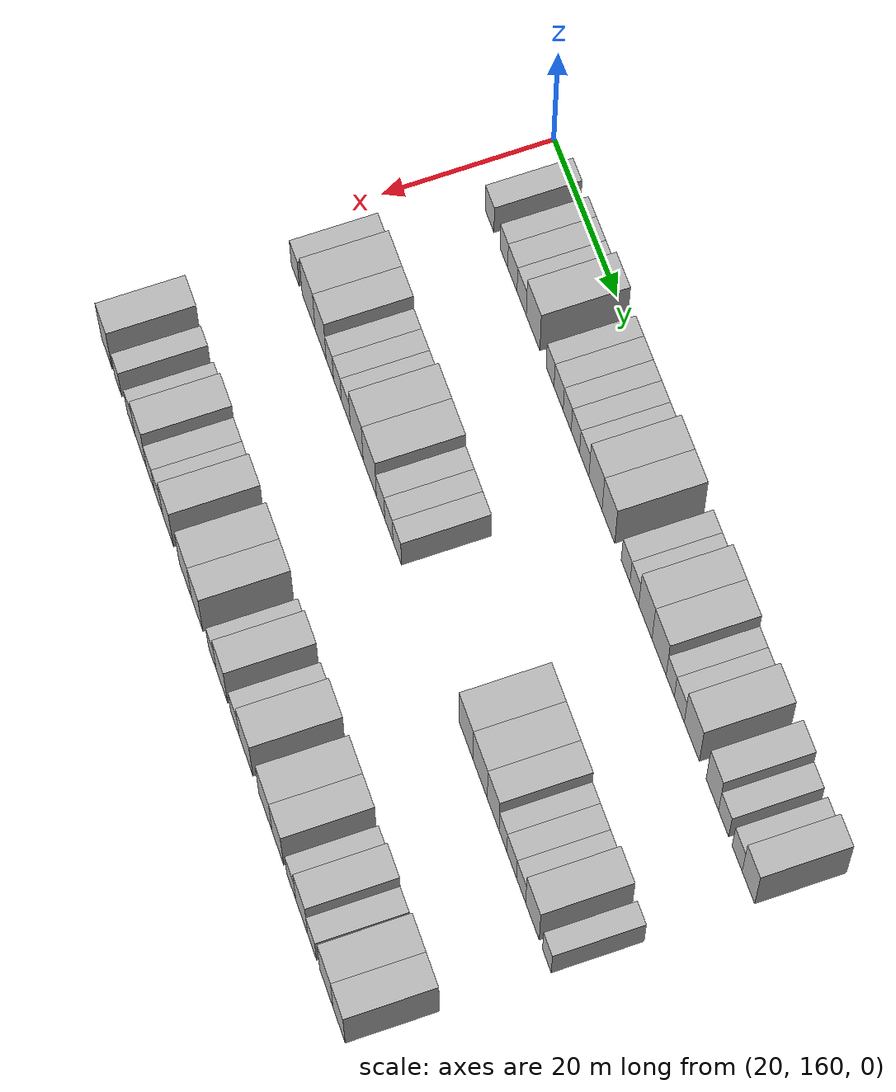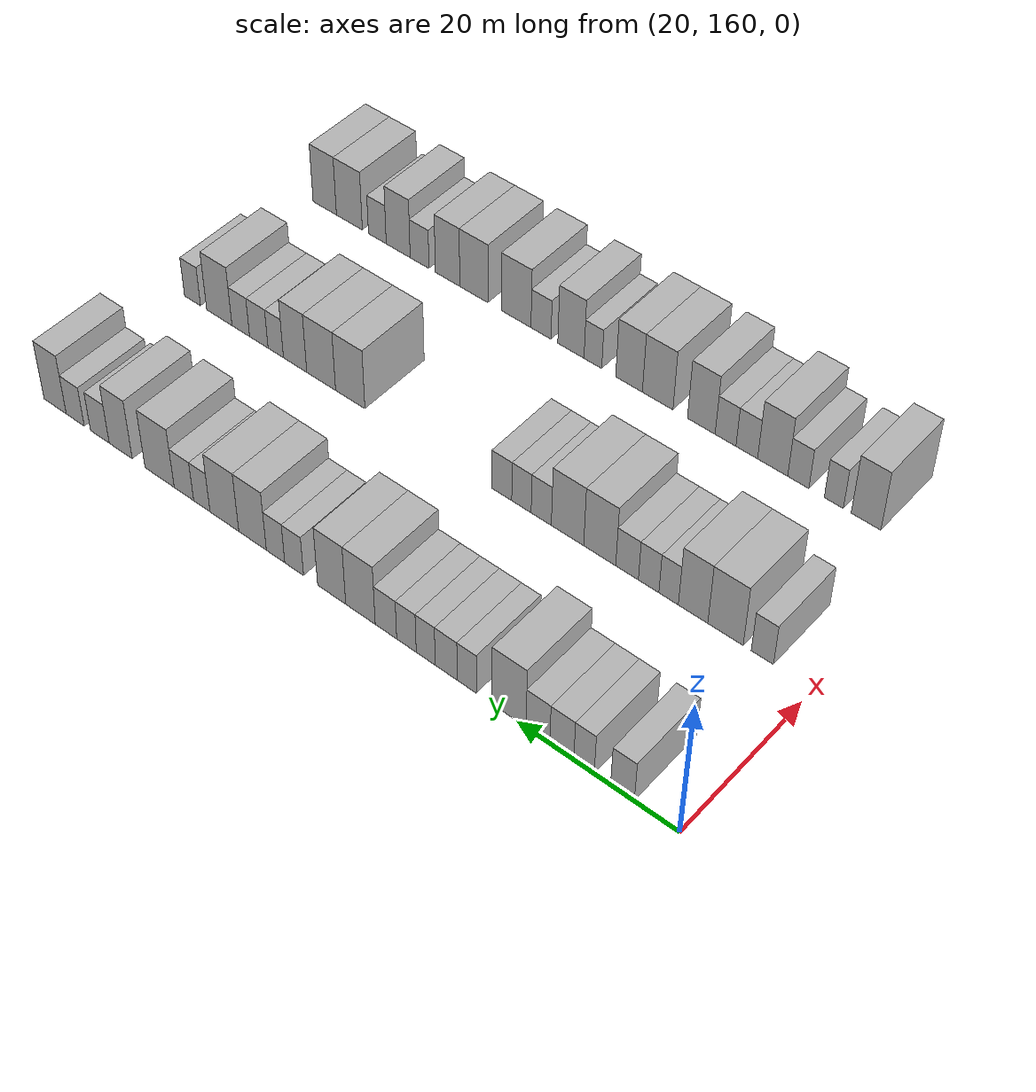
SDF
<sdf version="1.6">
 <world name="default">
  <model name="building_112">
   <static>1</static>
   <pose>25.0000 166.9555 0 0.000000 0.000000 0.000000</pose>
   <link name="link">
    <pose>0 0 3.00 0 0 0</pose>
    <collision name="collision"><geometry><box><size>10.0000 2.8758 6.0000</size></box></geometry></collision>
    <visual name="visual">
     <cast_shadows>0</cast_shadows>
     <geometry><box><size>10.0000 2.8758 6.0000</size></box></geometry>
     <material>
      <script>
       <uri>model://HANNAS_wall/materials/scripts</uri>
       <uri>model://HANNAS_wall/materials/textures</uri>
       <name>vrc/HANNAS_wall</name>
      </script>
     </material>
    </visual>
   </link>
  </model>
  <model name="building_113">
   <static>1</static>
   <pose>25.0000 171.6532 0 0.000000 0.000000 0.000000</pose>
   <link name="link">
    <pose>0 0 3.00 0 0 0</pose>
    <collision name="collision"><geometry><box><size>10.0000 2.5194 6.0000</size></box></geometry></collision>
    <visual name="visual">
     <cast_shadows>0</cast_shadows>
     <geometry><box><size>10.0000 2.5194 6.0000</size></box></geometry>
     <material>
      <script>
       <uri>model://HANNAS_wall/materials/scripts</uri>
       <uri>model://HANNAS_wall/materials/textures</uri>
       <name>vrc/HANNAS_wall</name>
      </script>
     </material>
    </visual>
   </link>
  </model>
  <model name="building_114">
   <static>1</static>
   <pose>25.0000 174.4103 0 0.000000 0.000000 0.000000</pose>
   <link name="link">
    <pose>0 0 3.00 0 0 0</pose>
    <collision name="collision"><geometry><box><size>10.0000 2.9949 6.0000</size></box></geometry></collision>
    <visual name="visual">
     <cast_shadows>0</cast_shadows>
     <geometry><box><size>10.0000 2.9949 6.0000</size></box></geometry>
     <material>
      <script>
       <uri>model://HANNAS_wall/materials/scripts</uri>
       <uri>model://HANNAS_wall/materials/textures</uri>
       <name>vrc/HANNAS_wall</name>
      </script>
     </material>
    </visual>
   </link>
  </model>
  <model name="building_115">
   <static>1</static>
   <pose>25.0000 177.4058 0 0.000000 0.000000 0.000000</pose>
   <link name="link">
    <pose>0 0 3.00 0 0 0</pose>
    <collision name="collision"><geometry><box><size>10.0000 2.9961 6.0000</size></box></geometry></collision>
    <visual name="visual">
     <cast_shadows>0</cast_shadows>
     <geometry><box><size>10.0000 2.9961 6.0000</size></box></geometry>
     <material>
      <script>
       <uri>model://HANNAS_wall/materials/scripts</uri>
       <uri>model://HANNAS_wall/materials/textures</uri>
       <name>vrc/HANNAS_wall</name>
      </script>
     </material>
    </visual>
   </link>
  </model>
  <model name="building_116">
   <static>1</static>
   <pose>25.0000 181.0945 0 0.000000 0.000000 0.000000</pose>
   <link name="link">
    <pose>0 0 4.50 0 0 0</pose>
    <collision name="collision"><geometry><box><size>10.0000 4.3812 9.0000</size></box></geometry></collision>
    <visual name="visual">
     <cast_shadows>0</cast_shadows>
     <geometry><box><size>10.0000 4.3812 9.0000</size></box></geometry>
     <material>
      <script>
       <uri>model://HANNAS_wall/materials/scripts</uri>
       <uri>model://HANNAS_wall/materials/textures</uri>
       <name>vrc/HANNAS_wall</name>
      </script>
     </material>
    </visual>
   </link>
  </model>
  <model name="building_117">
   <static>1</static>
   <pose>25.0000 186.5405 0 0.000000 0.000000 0.000000</pose>
   <link name="link">
    <pose>0 0 3.00 0 0 0</pose>
    <collision name="collision"><geometry><box><size>10.0000 2.5109 6.0000</size></box></geometry></collision>
    <visual name="visual">
     <cast_shadows>0</cast_shadows>
     <geometry><box><size>10.0000 2.5109 6.0000</size></box></geometry>
     <material>
      <script>
       <uri>model://HANNAS_wall/materials/scripts</uri>
       <uri>model://HANNAS_wall/materials/textures</uri>
       <name>vrc/HANNAS_wall</name>
      </script>
     </material>
    </visual>
   </link>
  </model>
  <model name="building_118">
   <static>1</static>
   <pose>25.0000 189.2500 0 0.000000 0.000000 0.000000</pose>
   <link name="link">
    <pose>0 0 3.00 0 0 0</pose>
    <collision name="collision"><geometry><box><size>10.0000 2.9079 6.0000</size></box></geometry></collision>
    <visual name="visual">
     <cast_shadows>0</cast_shadows>
     <geometry><box><size>10.0000 2.9079 6.0000</size></box></geometry>
     <material>
      <script>
       <uri>model://HANNAS_wall/materials/scripts</uri>
       <uri>model://HANNAS_wall/materials/textures</uri>
       <name>vrc/HANNAS_wall</name>
      </script>
     </material>
    </visual>
   </link>
  </model>
  <model name="building_119">
   <static>1</static>
   <pose>25.0000 191.9721 0 0.000000 0.000000 0.000000</pose>
   <link name="link">
    <pose>0 0 3.00 0 0 0</pose>
    <collision name="collision"><geometry><box><size>10.0000 2.5364 6.0000</size></box></geometry></collision>
    <visual name="visual">
     <cast_shadows>0</cast_shadows>
     <geometry><box><size>10.0000 2.5364 6.0000</size></box></geometry>
     <material>
      <script>
       <uri>model://HANNAS_wall/materials/scripts</uri>
       <uri>model://HANNAS_wall/materials/textures</uri>
       <name>vrc/HANNAS_wall</name>
      </script>
     </material>
    </visual>
   </link>
  </model>
  <model name="building_120">
   <static>1</static>
   <pose>25.0000 194.5584 0 0.000000 0.000000 0.000000</pose>
   <link name="link">
    <pose>0 0 3.00 0 0 0</pose>
    <collision name="collision"><geometry><box><size>10.0000 2.6361 6.0000</size></box></geometry></collision>
    <visual name="visual">
     <cast_shadows>0</cast_shadows>
     <geometry><box><size>10.0000 2.6361 6.0000</size></box></geometry>
     <material>
      <script>
       <uri>model://HANNAS_wall/materials/scripts</uri>
       <uri>model://HANNAS_wall/materials/textures</uri>
       <name>vrc/HANNAS_wall</name>
      </script>
     </material>
    </visual>
   </link>
  </model>
  <model name="building_121">
   <static>1</static>
   <pose>25.0000 197.3425 0 0.000000 0.000000 0.000000</pose>
   <link name="link">
    <pose>0 0 3.00 0 0 0</pose>
    <collision name="collision"><geometry><box><size>10.0000 2.9322 6.0000</size></box></geometry></collision>
    <visual name="visual">
     <cast_shadows>0</cast_shadows>
     <geometry><box><size>10.0000 2.9322 6.0000</size></box></geometry>
     <material>
      <script>
       <uri>model://HANNAS_wall/materials/scripts</uri>
       <uri>model://HANNAS_wall/materials/textures</uri>
       <name>vrc/HANNAS_wall</name>
      </script>
     </material>
    </visual>
   </link>
  </model>
  <model name="building_122">
   <static>1</static>
   <pose>25.0000 200.8500 0 0.000000 0.000000 0.000000</pose>
   <link name="link">
    <pose>0 0 4.50 0 0 0</pose>
    <collision name="collision"><geometry><box><size>10.0000 4.0829 9.0000</size></box></geometry></collision>
    <visual name="visual">
     <cast_shadows>0</cast_shadows>
     <geometry><box><size>10.0000 4.0829 9.0000</size></box></geometry>
     <material>
      <script>
       <uri>model://HANNAS_wall/materials/scripts</uri>
       <uri>model://HANNAS_wall/materials/textures</uri>
       <name>vrc/HANNAS_wall</name>
      </script>
     </material>
    </visual>
   </link>
  </model>
  <model name="building_123">
   <static>1</static>
   <pose>25.0000 204.8620 0 0.000000 0.000000 0.000000</pose>
   <link name="link">
    <pose>0 0 4.50 0 0 0</pose>
    <collision name="collision"><geometry><box><size>10.0000 3.9411 9.0000</size></box></geometry></collision>
    <visual name="visual">
     <cast_shadows>0</cast_shadows>
     <geometry><box><size>10.0000 3.9411 9.0000</size></box></geometry>
     <material>
      <script>
       <uri>model://HANNAS_wall/materials/scripts</uri>
       <uri>model://HANNAS_wall/materials/textures</uri>
       <name>vrc/HANNAS_wall</name>
      </script>
     </material>
    </visual>
   </link>
  </model>
  <model name="building_124">
   <static>1</static>
   <pose>25.0000 210.1805 0 0.000000 0.000000 0.000000</pose>
   <link name="link">
    <pose>0 0 3.00 0 0 0</pose>
    <collision name="collision"><geometry><box><size>10.0000 2.6959 6.0000</size></box></geometry></collision>
    <visual name="visual">
     <cast_shadows>0</cast_shadows>
     <geometry><box><size>10.0000 2.6959 6.0000</size></box></geometry>
     <material>
      <script>
       <uri>model://HANNAS_wall/materials/scripts</uri>
       <uri>model://HANNAS_wall/materials/textures</uri>
       <name>vrc/HANNAS_wall</name>
      </script>
     </material>
    </visual>
   </link>
  </model>
  <model name="building_125">
   <static>1</static>
   <pose>25.0000 212.8593 0 0.000000 0.000000 0.000000</pose>
   <link name="link">
    <pose>0 0 3.00 0 0 0</pose>
    <collision name="collision"><geometry><box><size>10.0000 2.6619 6.0000</size></box></geometry></collision>
    <visual name="visual">
     <cast_shadows>0</cast_shadows>
     <geometry><box><size>10.0000 2.6619 6.0000</size></box></geometry>
     <material>
      <script>
       <uri>model://HANNAS_wall/materials/scripts</uri>
       <uri>model://HANNAS_wall/materials/textures</uri>
       <name>vrc/HANNAS_wall</name>
      </script>
     </material>
    </visual>
   </link>
  </model>
  <model name="building_126">
   <static>1</static>
   <pose>25.0000 216.2105 0 0.000000 0.000000 0.000000</pose>
   <link name="link">
    <pose>0 0 4.50 0 0 0</pose>
    <collision name="collision"><geometry><box><size>10.0000 4.0404 9.0000</size></box></geometry></collision>
    <visual name="visual">
     <cast_shadows>0</cast_shadows>
     <geometry><box><size>10.0000 4.0404 9.0000</size></box></geometry>
     <material>
      <script>
       <uri>model://HANNAS_wall/materials/scripts</uri>
       <uri>model://HANNAS_wall/materials/textures</uri>
       <name>vrc/HANNAS_wall</name>
      </script>
     </material>
    </visual>
   </link>
  </model>
  <model name="building_127">
   <static>1</static>
   <pose>25.0000 220.3728 0 0.000000 0.000000 0.000000</pose>
   <link name="link">
    <pose>0 0 4.50 0 0 0</pose>
    <collision name="collision"><geometry><box><size>10.0000 4.2842 9.0000</size></box></geometry></collision>
    <visual name="visual">
     <cast_shadows>0</cast_shadows>
     <geometry><box><size>10.0000 4.2842 9.0000</size></box></geometry>
     <material>
      <script>
       <uri>model://HANNAS_wall/materials/scripts</uri>
       <uri>model://HANNAS_wall/materials/textures</uri>
       <name>vrc/HANNAS_wall</name>
      </script>
     </material>
    </visual>
   </link>
  </model>
  <model name="building_128">
   <static>1</static>
   <pose>25.0000 223.7471 0 0.000000 0.000000 0.000000</pose>
   <link name="link">
    <pose>0 0 3.00 0 0 0</pose>
    <collision name="collision"><geometry><box><size>10.0000 2.4646 6.0000</size></box></geometry></collision>
    <visual name="visual">
     <cast_shadows>0</cast_shadows>
     <geometry><box><size>10.0000 2.4646 6.0000</size></box></geometry>
     <material>
      <script>
       <uri>model://HANNAS_wall/materials/scripts</uri>
       <uri>model://HANNAS_wall/materials/textures</uri>
       <name>vrc/HANNAS_wall</name>
      </script>
     </material>
    </visual>
   </link>
  </model>
  <model name="building_129">
   <static>1</static>
   <pose>25.0000 226.4633 0 0.000000 0.000000 0.000000</pose>
   <link name="link">
    <pose>0 0 3.00 0 0 0</pose>
    <collision name="collision"><geometry><box><size>10.0000 2.9677 6.0000</size></box></geometry></collision>
    <visual name="visual">
     <cast_shadows>0</cast_shadows>
     <geometry><box><size>10.0000 2.9677 6.0000</size></box></geometry>
     <material>
      <script>
       <uri>model://HANNAS_wall/materials/scripts</uri>
       <uri>model://HANNAS_wall/materials/textures</uri>
       <name>vrc/HANNAS_wall</name>
      </script>
     </material>
    </visual>
   </link>
  </model>
  <model name="building_130">
   <static>1</static>
   <pose>25.0000 230.1947 0 0.000000 0.000000 0.000000</pose>
   <link name="link">
    <pose>0 0 4.50 0 0 0</pose>
    <collision name="collision"><geometry><box><size>10.0000 4.4953 9.0000</size></box></geometry></collision>
    <visual name="visual">
     <cast_shadows>0</cast_shadows>
     <geometry><box><size>10.0000 4.4953 9.0000</size></box></geometry>
     <material>
      <script>
       <uri>model://HANNAS_wall/materials/scripts</uri>
       <uri>model://HANNAS_wall/materials/textures</uri>
       <name>vrc/HANNAS_wall</name>
      </script>
     </material>
    </visual>
   </link>
  </model>
  <model name="building_131">
   <static>1</static>
   <pose>25.0000 236.2618 0 0.000000 0.000000 0.000000</pose>
   <link name="link">
    <pose>0 0 4.50 0 0 0</pose>
    <collision name="collision"><geometry><box><size>10.0000 3.6388 9.0000</size></box></geometry></collision>
    <visual name="visual">
     <cast_shadows>0</cast_shadows>
     <geometry><box><size>10.0000 3.6388 9.0000</size></box></geometry>
     <material>
      <script>
       <uri>model://HANNAS_wall/materials/scripts</uri>
       <uri>model://HANNAS_wall/materials/textures</uri>
       <name>vrc/HANNAS_wall</name>
      </script>
     </material>
    </visual>
   </link>
  </model>
  <model name="building_132">
   <static>1</static>
   <pose>25.0000 239.5711 0 0.000000 0.000000 0.000000</pose>
   <link name="link">
    <pose>0 0 3.00 0 0 0</pose>
    <collision name="collision"><geometry><box><size>10.0000 2.9800 6.0000</size></box></geometry></collision>
    <visual name="visual">
     <cast_shadows>0</cast_shadows>
     <geometry><box><size>10.0000 2.9800 6.0000</size></box></geometry>
     <material>
      <script>
       <uri>model://HANNAS_wall/materials/scripts</uri>
       <uri>model://HANNAS_wall/materials/textures</uri>
       <name>vrc/HANNAS_wall</name>
      </script>
     </material>
    </visual>
   </link>
  </model>
  <model name="building_133">
   <static>1</static>
   <pose>25.0000 243.5225 0 0.000000 0.000000 0.000000</pose>
   <link name="link">
    <pose>0 0 3.00 0 0 0</pose>
    <collision name="collision"><geometry><box><size>10.0000 2.9228 6.0000</size></box></geometry></collision>
    <visual name="visual">
     <cast_shadows>0</cast_shadows>
     <geometry><box><size>10.0000 2.9228 6.0000</size></box></geometry>
     <material>
      <script>
       <uri>model://HANNAS_wall/materials/scripts</uri>
       <uri>model://HANNAS_wall/materials/textures</uri>
       <name>vrc/HANNAS_wall</name>
      </script>
     </material>
    </visual>
   </link>
  </model>
  <model name="building_134">
   <static>1</static>
   <pose>25.0000 246.7960 0 0.000000 0.000000 0.000000</pose>
   <link name="link">
    <pose>0 0 4.50 0 0 0</pose>
    <collision name="collision"><geometry><box><size>10.0000 3.6241 9.0000</size></box></geometry></collision>
    <visual name="visual">
     <cast_shadows>0</cast_shadows>
     <geometry><box><size>10.0000 3.6241 9.0000</size></box></geometry>
     <material>
      <script>
       <uri>model://HANNAS_wall/materials/scripts</uri>
       <uri>model://HANNAS_wall/materials/textures</uri>
       <name>vrc/HANNAS_wall</name>
      </script>
     </material>
    </visual>
   </link>
  </model>
  <model name="building_241">
   <static>1</static>
   <pose>47.0000 166.1976 0 0.000000 0.000000 0.000000</pose>
   <link name="link">
    <pose>0 0 3.00 0 0 0</pose>
    <collision name="collision"><geometry><box><size>10.0000 2.7331 6.0000</size></box></geometry></collision>
    <visual name="visual">
     <cast_shadows>0</cast_shadows>
     <geometry><box><size>10.0000 2.7331 6.0000</size></box></geometry>
     <material>
      <script>
       <uri>model://HANNAS_wall/materials/scripts</uri>
       <uri>model://HANNAS_wall/materials/textures</uri>
       <name>vrc/HANNAS_wall</name>
      </script>
     </material>
    </visual>
   </link>
  </model>
  <model name="building_242">
   <static>1</static>
   <pose>47.0000 170.7808 0 0.000000 0.000000 0.000000</pose>
   <link name="link">
    <pose>0 0 4.50 0 0 0</pose>
    <collision name="collision"><geometry><box><size>10.0000 4.4334 9.0000</size></box></geometry></collision>
    <visual name="visual">
     <cast_shadows>0</cast_shadows>
     <geometry><box><size>10.0000 4.4334 9.0000</size></box></geometry>
     <material>
      <script>
       <uri>model://HANNAS_wall/materials/scripts</uri>
       <uri>model://HANNAS_wall/materials/textures</uri>
       <name>vrc/HANNAS_wall</name>
      </script>
     </material>
    </visual>
   </link>
  </model>
  <model name="building_243">
   <static>1</static>
   <pose>47.0000 174.8718 0 0.000000 0.000000 0.000000</pose>
   <link name="link">
    <pose>0 0 4.50 0 0 0</pose>
    <collision name="collision"><geometry><box><size>10.0000 3.7485 9.0000</size></box></geometry></collision>
    <visual name="visual">
     <cast_shadows>0</cast_shadows>
     <geometry><box><size>10.0000 3.7485 9.0000</size></box></geometry>
     <material>
      <script>
       <uri>model://HANNAS_wall/materials/scripts</uri>
       <uri>model://HANNAS_wall/materials/textures</uri>
       <name>vrc/HANNAS_wall</name>
      </script>
     </material>
    </visual>
   </link>
  </model>
  <model name="building_244">
   <static>1</static>
   <pose>47.0000 177.9963 0 0.000000 0.000000 0.000000</pose>
   <link name="link">
    <pose>0 0 3.00 0 0 0</pose>
    <collision name="collision"><geometry><box><size>10.0000 2.5005 6.0000</size></box></geometry></collision>
    <visual name="visual">
     <cast_shadows>0</cast_shadows>
     <geometry><box><size>10.0000 2.5005 6.0000</size></box></geometry>
     <material>
      <script>
       <uri>model://HANNAS_wall/materials/scripts</uri>
       <uri>model://HANNAS_wall/materials/textures</uri>
       <name>vrc/HANNAS_wall</name>
      </script>
     </material>
    </visual>
   </link>
  </model>
  <model name="building_245">
   <static>1</static>
   <pose>47.0000 180.5786 0 0.000000 0.000000 0.000000</pose>
   <link name="link">
    <pose>0 0 3.00 0 0 0</pose>
    <collision name="collision"><geometry><box><size>10.0000 2.6640 6.0000</size></box></geometry></collision>
    <visual name="visual">
     <cast_shadows>0</cast_shadows>
     <geometry><box><size>10.0000 2.6640 6.0000</size></box></geometry>
     <material>
      <script>
       <uri>model://HANNAS_wall/materials/scripts</uri>
       <uri>model://HANNAS_wall/materials/textures</uri>
       <name>vrc/HANNAS_wall</name>
      </script>
     </material>
    </visual>
   </link>
  </model>
  <model name="building_246">
   <static>1</static>
   <pose>47.0000 183.3971 0 0.000000 0.000000 0.000000</pose>
   <link name="link">
    <pose>0 0 3.00 0 0 0</pose>
    <collision name="collision"><geometry><box><size>10.0000 2.9731 6.0000</size></box></geometry></collision>
    <visual name="visual">
     <cast_shadows>0</cast_shadows>
     <geometry><box><size>10.0000 2.9731 6.0000</size></box></geometry>
     <material>
      <script>
       <uri>model://HANNAS_wall/materials/scripts</uri>
       <uri>model://HANNAS_wall/materials/textures</uri>
       <name>vrc/HANNAS_wall</name>
      </script>
     </material>
    </visual>
   </link>
  </model>
  <model name="building_247">
   <static>1</static>
   <pose>47.0000 187.0184 0 0.000000 0.000000 0.000000</pose>
   <link name="link">
    <pose>0 0 4.50 0 0 0</pose>
    <collision name="collision"><geometry><box><size>10.0000 4.2694 9.0000</size></box></geometry></collision>
    <visual name="visual">
     <cast_shadows>0</cast_shadows>
     <geometry><box><size>10.0000 4.2694 9.0000</size></box></geometry>
     <material>
      <script>
       <uri>model://HANNAS_wall/materials/scripts</uri>
       <uri>model://HANNAS_wall/materials/textures</uri>
       <name>vrc/HANNAS_wall</name>
      </script>
     </material>
    </visual>
   </link>
  </model>
  <model name="building_248">
   <static>1</static>
   <pose>47.0000 191.3420 0 0.000000 0.000000 0.000000</pose>
   <link name="link">
    <pose>0 0 4.50 0 0 0</pose>
    <collision name="collision"><geometry><box><size>10.0000 4.3778 9.0000</size></box></geometry></collision>
    <visual name="visual">
     <cast_shadows>0</cast_shadows>
     <geometry><box><size>10.0000 4.3778 9.0000</size></box></geometry>
     <material>
      <script>
       <uri>model://HANNAS_wall/materials/scripts</uri>
       <uri>model://HANNAS_wall/materials/textures</uri>
       <name>vrc/HANNAS_wall</name>
      </script>
     </material>
    </visual>
   </link>
  </model>
  <model name="building_249">
   <static>1</static>
   <pose>47.0000 194.9148 0 0.000000 0.000000 0.000000</pose>
   <link name="link">
    <pose>0 0 3.00 0 0 0</pose>
    <collision name="collision"><geometry><box><size>10.0000 2.7678 6.0000</size></box></geometry></collision>
    <visual name="visual">
     <cast_shadows>0</cast_shadows>
     <geometry><box><size>10.0000 2.7678 6.0000</size></box></geometry>
     <material>
      <script>
       <uri>model://HANNAS_wall/materials/scripts</uri>
       <uri>model://HANNAS_wall/materials/textures</uri>
       <name>vrc/HANNAS_wall</name>
      </script>
     </material>
    </visual>
   </link>
  </model>
  <model name="building_250">
   <static>1</static>
   <pose>47.0000 197.6421 0 0.000000 0.000000 0.000000</pose>
   <link name="link">
    <pose>0 0 3.00 0 0 0</pose>
    <collision name="collision"><geometry><box><size>10.0000 2.6870 6.0000</size></box></geometry></collision>
    <visual name="visual">
     <cast_shadows>0</cast_shadows>
     <geometry><box><size>10.0000 2.6870 6.0000</size></box></geometry>
     <material>
      <script>
       <uri>model://HANNAS_wall/materials/scripts</uri>
       <uri>model://HANNAS_wall/materials/textures</uri>
       <name>vrc/HANNAS_wall</name>
      </script>
     </material>
    </visual>
   </link>
  </model>
  <model name="building_251">
   <static>1</static>
   <pose>47.0000 200.3770 0 0.000000 0.000000 0.000000</pose>
   <link name="link">
    <pose>0 0 3.00 0 0 0</pose>
    <collision name="collision"><geometry><box><size>10.0000 2.7827 6.0000</size></box></geometry></collision>
    <visual name="visual">
     <cast_shadows>0</cast_shadows>
     <geometry><box><size>10.0000 2.7827 6.0000</size></box></geometry>
     <material>
      <script>
       <uri>model://HANNAS_wall/materials/scripts</uri>
       <uri>model://HANNAS_wall/materials/textures</uri>
       <name>vrc/HANNAS_wall</name>
      </script>
     </material>
    </visual>
   </link>
  </model>
  <model name="building_252">
   <static>1</static>
   <pose>47.0000 222.4279 0 0.000000 0.000000 0.000000</pose>
   <link name="link">
    <pose>0 0 4.50 0 0 0</pose>
    <collision name="collision"><geometry><box><size>10.0000 4.4398 9.0000</size></box></geometry></collision>
    <visual name="visual">
     <cast_shadows>0</cast_shadows>
     <geometry><box><size>10.0000 4.4398 9.0000</size></box></geometry>
     <material>
      <script>
       <uri>model://HANNAS_wall/materials/scripts</uri>
       <uri>model://HANNAS_wall/materials/textures</uri>
       <name>vrc/HANNAS_wall</name>
      </script>
     </material>
    </visual>
   </link>
  </model>
  <model name="building_253">
   <static>1</static>
   <pose>47.0000 226.8636 0 0.000000 0.000000 0.000000</pose>
   <link name="link">
    <pose>0 0 4.50 0 0 0</pose>
    <collision name="collision"><geometry><box><size>10.0000 4.4316 9.0000</size></box></geometry></collision>
    <visual name="visual">
     <cast_shadows>0</cast_shadows>
     <geometry><box><size>10.0000 4.4316 9.0000</size></box></geometry>
     <material>
      <script>
       <uri>model://HANNAS_wall/materials/scripts</uri>
       <uri>model://HANNAS_wall/materials/textures</uri>
       <name>vrc/HANNAS_wall</name>
      </script>
     </material>
    </visual>
   </link>
  </model>
  <model name="building_254">
   <static>1</static>
   <pose>47.0000 230.8967 0 0.000000 0.000000 0.000000</pose>
   <link name="link">
    <pose>0 0 4.50 0 0 0</pose>
    <collision name="collision"><geometry><box><size>10.0000 3.6346 9.0000</size></box></geometry></collision>
    <visual name="visual">
     <cast_shadows>0</cast_shadows>
     <geometry><box><size>10.0000 3.6346 9.0000</size></box></geometry>
     <material>
      <script>
       <uri>model://HANNAS_wall/materials/scripts</uri>
       <uri>model://HANNAS_wall/materials/textures</uri>
       <name>vrc/HANNAS_wall</name>
      </script>
     </material>
    </visual>
   </link>
  </model>
  <model name="building_255">
   <static>1</static>
   <pose>47.0000 233.9249 0 0.000000 0.000000 0.000000</pose>
   <link name="link">
    <pose>0 0 3.00 0 0 0</pose>
    <collision name="collision"><geometry><box><size>10.0000 2.4217 6.0000</size></box></geometry></collision>
    <visual name="visual">
     <cast_shadows>0</cast_shadows>
     <geometry><box><size>10.0000 2.4217 6.0000</size></box></geometry>
     <material>
      <script>
       <uri>model://HANNAS_wall/materials/scripts</uri>
       <uri>model://HANNAS_wall/materials/textures</uri>
       <name>vrc/HANNAS_wall</name>
      </script>
     </material>
    </visual>
   </link>
  </model>
  <model name="building_256">
   <static>1</static>
   <pose>47.0000 236.6046 0 0.000000 0.000000 0.000000</pose>
   <link name="link">
    <pose>0 0 3.00 0 0 0</pose>
    <collision name="collision"><geometry><box><size>10.0000 2.9377 6.0000</size></box></geometry></collision>
    <visual name="visual">
     <cast_shadows>0</cast_shadows>
     <geometry><box><size>10.0000 2.9377 6.0000</size></box></geometry>
     <material>
      <script>
       <uri>model://HANNAS_wall/materials/scripts</uri>
       <uri>model://HANNAS_wall/materials/textures</uri>
       <name>vrc/HANNAS_wall</name>
      </script>
     </material>
    </visual>
   </link>
  </model>
  <model name="building_257">
   <static>1</static>
   <pose>47.0000 239.4876 0 0.000000 0.000000 0.000000</pose>
   <link name="link">
    <pose>0 0 3.00 0 0 0</pose>
    <collision name="collision"><geometry><box><size>10.0000 2.8284 6.0000</size></box></geometry></collision>
    <visual name="visual">
     <cast_shadows>0</cast_shadows>
     <geometry><box><size>10.0000 2.8284 6.0000</size></box></geometry>
     <material>
      <script>
       <uri>model://HANNAS_wall/materials/scripts</uri>
       <uri>model://HANNAS_wall/materials/textures</uri>
       <name>vrc/HANNAS_wall</name>
      </script>
     </material>
    </visual>
   </link>
  </model>
  <model name="building_258">
   <static>1</static>
   <pose>47.0000 242.9554 0 0.000000 0.000000 0.000000</pose>
   <link name="link">
    <pose>0 0 4.50 0 0 0</pose>
    <collision name="collision"><geometry><box><size>10.0000 4.1072 9.0000</size></box></geometry></collision>
    <visual name="visual">
     <cast_shadows>0</cast_shadows>
     <geometry><box><size>10.0000 4.1072 9.0000</size></box></geometry>
     <material>
      <script>
       <uri>model://HANNAS_wall/materials/scripts</uri>
       <uri>model://HANNAS_wall/materials/textures</uri>
       <name>vrc/HANNAS_wall</name>
      </script>
     </material>
    </visual>
   </link>
  </model>
  <model name="building_259">
   <static>1</static>
   <pose>47.0000 247.3245 0 0.000000 0.000000 0.000000</pose>
   <link name="link">
    <pose>0 0 3.00 0 0 0</pose>
    <collision name="collision"><geometry><box><size>10.0000 2.6310 6.0000</size></box></geometry></collision>
    <visual name="visual">
     <cast_shadows>0</cast_shadows>
     <geometry><box><size>10.0000 2.6310 6.0000</size></box></geometry>
     <material>
      <script>
       <uri>model://HANNAS_wall/materials/scripts</uri>
       <uri>model://HANNAS_wall/materials/textures</uri>
       <name>vrc/HANNAS_wall</name>
      </script>
     </material>
    </visual>
   </link>
  </model>
  <model name="building_355">
   <static>1</static>
   <pose>69.0000 168.3542 0 0.000000 0.000000 0.000000</pose>
   <link name="link">
    <pose>0 0 4.50 0 0 0</pose>
    <collision name="collision"><geometry><box><size>10.0000 3.7663 9.0000</size></box></geometry></collision>
    <visual name="visual">
     <cast_shadows>0</cast_shadows>
     <geometry><box><size>10.0000 3.7663 9.0000</size></box></geometry>
     <material>
      <script>
       <uri>model://HANNAS_wall/materials/scripts</uri>
       <uri>model://HANNAS_wall/materials/textures</uri>
       <name>vrc/HANNAS_wall</name>
      </script>
     </material>
    </visual>
   </link>
  </model>
  <model name="building_356">
   <static>1</static>
   <pose>69.0000 172.4611 0 0.000000 0.000000 0.000000</pose>
   <link name="link">
    <pose>0 0 3.00 0 0 0</pose>
    <collision name="collision"><geometry><box><size>10.0000 2.4475 6.0000</size></box></geometry></collision>
    <visual name="visual">
     <cast_shadows>0</cast_shadows>
     <geometry><box><size>10.0000 2.4475 6.0000</size></box></geometry>
     <material>
      <script>
       <uri>model://HANNAS_wall/materials/scripts</uri>
       <uri>model://HANNAS_wall/materials/textures</uri>
       <name>vrc/HANNAS_wall</name>
      </script>
     </material>
    </visual>
   </link>
  </model>
  <model name="building_357">
   <static>1</static>
   <pose>69.0000 177.0715 0 0.000000 0.000000 0.000000</pose>
   <link name="link">
    <pose>0 0 3.00 0 0 0</pose>
    <collision name="collision"><geometry><box><size>10.0000 2.7733 6.0000</size></box></geometry></collision>
    <visual name="visual">
     <cast_shadows>0</cast_shadows>
     <geometry><box><size>10.0000 2.7733 6.0000</size></box></geometry>
     <material>
      <script>
       <uri>model://HANNAS_wall/materials/scripts</uri>
       <uri>model://HANNAS_wall/materials/textures</uri>
       <name>vrc/HANNAS_wall</name>
      </script>
     </material>
    </visual>
   </link>
  </model>
  <model name="building_358">
   <static>1</static>
   <pose>69.0000 180.4498 0 0.000000 0.000000 0.000000</pose>
   <link name="link">
    <pose>0 0 4.50 0 0 0</pose>
    <collision name="collision"><geometry><box><size>10.0000 3.9834 9.0000</size></box></geometry></collision>
    <visual name="visual">
     <cast_shadows>0</cast_shadows>
     <geometry><box><size>10.0000 3.9834 9.0000</size></box></geometry>
     <material>
      <script>
       <uri>model://HANNAS_wall/materials/scripts</uri>
       <uri>model://HANNAS_wall/materials/textures</uri>
       <name>vrc/HANNAS_wall</name>
      </script>
     </material>
    </visual>
   </link>
  </model>
  <model name="building_359">
   <static>1</static>
   <pose>69.0000 183.8854 0 0.000000 0.000000 0.000000</pose>
   <link name="link">
    <pose>0 0 3.00 0 0 0</pose>
    <collision name="collision"><geometry><box><size>10.0000 2.8877 6.0000</size></box></geometry></collision>
    <visual name="visual">
     <cast_shadows>0</cast_shadows>
     <geometry><box><size>10.0000 2.8877 6.0000</size></box></geometry>
     <material>
      <script>
       <uri>model://HANNAS_wall/materials/scripts</uri>
       <uri>model://HANNAS_wall/materials/textures</uri>
       <name>vrc/HANNAS_wall</name>
      </script>
     </material>
    </visual>
   </link>
  </model>
  <model name="building_360">
   <static>1</static>
   <pose>69.0000 186.7398 0 0.000000 0.000000 0.000000</pose>
   <link name="link">
    <pose>0 0 3.00 0 0 0</pose>
    <collision name="collision"><geometry><box><size>10.0000 2.8213 6.0000</size></box></geometry></collision>
    <visual name="visual">
     <cast_shadows>0</cast_shadows>
     <geometry><box><size>10.0000 2.8213 6.0000</size></box></geometry>
     <material>
      <script>
       <uri>model://HANNAS_wall/materials/scripts</uri>
       <uri>model://HANNAS_wall/materials/textures</uri>
       <name>vrc/HANNAS_wall</name>
      </script>
     </material>
    </visual>
   </link>
  </model>
  <model name="building_361">
   <static>1</static>
   <pose>69.0000 190.0456 0 0.000000 0.000000 0.000000</pose>
   <link name="link">
    <pose>0 0 4.50 0 0 0</pose>
    <collision name="collision"><geometry><box><size>10.0000 3.7904 9.0000</size></box></geometry></collision>
    <visual name="visual">
     <cast_shadows>0</cast_shadows>
     <geometry><box><size>10.0000 3.7904 9.0000</size></box></geometry>
     <material>
      <script>
       <uri>model://HANNAS_wall/materials/scripts</uri>
       <uri>model://HANNAS_wall/materials/textures</uri>
       <name>vrc/HANNAS_wall</name>
      </script>
     </material>
    </visual>
   </link>
  </model>
  <model name="building_362">
   <static>1</static>
   <pose>69.0000 196.0819 0 0.000000 0.000000 0.000000</pose>
   <link name="link">
    <pose>0 0 4.50 0 0 0</pose>
    <collision name="collision"><geometry><box><size>10.0000 4.2821 9.0000</size></box></geometry></collision>
    <visual name="visual">
     <cast_shadows>0</cast_shadows>
     <geometry><box><size>10.0000 4.2821 9.0000</size></box></geometry>
     <material>
      <script>
       <uri>model://HANNAS_wall/materials/scripts</uri>
       <uri>model://HANNAS_wall/materials/textures</uri>
       <name>vrc/HANNAS_wall</name>
      </script>
     </material>
    </visual>
   </link>
  </model>
  <model name="building_363">
   <static>1</static>
   <pose>69.0000 200.1141 0 0.000000 0.000000 0.000000</pose>
   <link name="link">
    <pose>0 0 4.50 0 0 0</pose>
    <collision name="collision"><geometry><box><size>10.0000 3.7824 9.0000</size></box></geometry></collision>
    <visual name="visual">
     <cast_shadows>0</cast_shadows>
     <geometry><box><size>10.0000 3.7824 9.0000</size></box></geometry>
     <material>
      <script>
       <uri>model://HANNAS_wall/materials/scripts</uri>
       <uri>model://HANNAS_wall/materials/textures</uri>
       <name>vrc/HANNAS_wall</name>
      </script>
     </material>
    </visual>
   </link>
  </model>
  <model name="building_364">
   <static>1</static>
   <pose>69.0000 205.2866 0 0.000000 0.000000 0.000000</pose>
   <link name="link">
    <pose>0 0 3.00 0 0 0</pose>
    <collision name="collision"><geometry><box><size>10.0000 2.5626 6.0000</size></box></geometry></collision>
    <visual name="visual">
     <cast_shadows>0</cast_shadows>
     <geometry><box><size>10.0000 2.5626 6.0000</size></box></geometry>
     <material>
      <script>
       <uri>model://HANNAS_wall/materials/scripts</uri>
       <uri>model://HANNAS_wall/materials/textures</uri>
       <name>vrc/HANNAS_wall</name>
      </script>
     </material>
    </visual>
   </link>
  </model>
  <model name="building_365">
   <static>1</static>
   <pose>69.0000 208.4828 0 0.000000 0.000000 0.000000</pose>
   <link name="link">
    <pose>0 0 4.50 0 0 0</pose>
    <collision name="collision"><geometry><box><size>10.0000 3.8298 9.0000</size></box></geometry></collision>
    <visual name="visual">
     <cast_shadows>0</cast_shadows>
     <geometry><box><size>10.0000 3.8298 9.0000</size></box></geometry>
     <material>
      <script>
       <uri>model://HANNAS_wall/materials/scripts</uri>
       <uri>model://HANNAS_wall/materials/textures</uri>
       <name>vrc/HANNAS_wall</name>
      </script>
     </material>
    </visual>
   </link>
  </model>
  <model name="building_366">
   <static>1</static>
   <pose>69.0000 212.8818 0 0.000000 0.000000 0.000000</pose>
   <link name="link">
    <pose>0 0 3.00 0 0 0</pose>
    <collision name="collision"><geometry><box><size>10.0000 2.9682 6.0000</size></box></geometry></collision>
    <visual name="visual">
     <cast_shadows>0</cast_shadows>
     <geometry><box><size>10.0000 2.9682 6.0000</size></box></geometry>
     <material>
      <script>
       <uri>model://HANNAS_wall/materials/scripts</uri>
       <uri>model://HANNAS_wall/materials/textures</uri>
       <name>vrc/HANNAS_wall</name>
      </script>
     </material>
    </visual>
   </link>
  </model>
  <model name="building_367">
   <static>1</static>
   <pose>69.0000 216.6023 0 0.000000 0.000000 0.000000</pose>
   <link name="link">
    <pose>0 0 4.50 0 0 0</pose>
    <collision name="collision"><geometry><box><size>10.0000 4.4729 9.0000</size></box></geometry></collision>
    <visual name="visual">
     <cast_shadows>0</cast_shadows>
     <geometry><box><size>10.0000 4.4729 9.0000</size></box></geometry>
     <material>
      <script>
       <uri>model://HANNAS_wall/materials/scripts</uri>
       <uri>model://HANNAS_wall/materials/textures</uri>
       <name>vrc/HANNAS_wall</name>
      </script>
     </material>
    </visual>
   </link>
  </model>
  <model name="building_368">
   <static>1</static>
   <pose>69.0000 223.0058 0 0.000000 0.000000 0.000000</pose>
   <link name="link">
    <pose>0 0 4.50 0 0 0</pose>
    <collision name="collision"><geometry><box><size>10.0000 4.3339 9.0000</size></box></geometry></collision>
    <visual name="visual">
     <cast_shadows>0</cast_shadows>
     <geometry><box><size>10.0000 4.3339 9.0000</size></box></geometry>
     <material>
      <script>
       <uri>model://HANNAS_wall/materials/scripts</uri>
       <uri>model://HANNAS_wall/materials/textures</uri>
       <name>vrc/HANNAS_wall</name>
      </script>
     </material>
    </visual>
   </link>
  </model>
  <model name="building_369">
   <static>1</static>
   <pose>69.0000 227.0702 0 0.000000 0.000000 0.000000</pose>
   <link name="link">
    <pose>0 0 4.50 0 0 0</pose>
    <collision name="collision"><geometry><box><size>10.0000 3.7949 9.0000</size></box></geometry></collision>
    <visual name="visual">
     <cast_shadows>0</cast_shadows>
     <geometry><box><size>10.0000 3.7949 9.0000</size></box></geometry>
     <material>
      <script>
       <uri>model://HANNAS_wall/materials/scripts</uri>
       <uri>model://HANNAS_wall/materials/textures</uri>
       <name>vrc/HANNAS_wall</name>
      </script>
     </material>
    </visual>
   </link>
  </model>
  <model name="building_370">
   <static>1</static>
   <pose>69.0000 231.4466 0 0.000000 0.000000 0.000000</pose>
   <link name="link">
    <pose>0 0 3.00 0 0 0</pose>
    <collision name="collision"><geometry><box><size>10.0000 2.9578 6.0000</size></box></geometry></collision>
    <visual name="visual">
     <cast_shadows>0</cast_shadows>
     <geometry><box><size>10.0000 2.9578 6.0000</size></box></geometry>
     <material>
      <script>
       <uri>model://HANNAS_wall/materials/scripts</uri>
       <uri>model://HANNAS_wall/materials/textures</uri>
       <name>vrc/HANNAS_wall</name>
      </script>
     </material>
    </visual>
   </link>
  </model>
  <model name="building_371">
   <static>1</static>
   <pose>69.0000 234.8361 0 0.000000 0.000000 0.000000</pose>
   <link name="link">
    <pose>0 0 4.50 0 0 0</pose>
    <collision name="collision"><geometry><box><size>10.0000 3.8214 9.0000</size></box></geometry></collision>
    <visual name="visual">
     <cast_shadows>0</cast_shadows>
     <geometry><box><size>10.0000 3.8214 9.0000</size></box></geometry>
     <material>
      <script>
       <uri>model://HANNAS_wall/materials/scripts</uri>
       <uri>model://HANNAS_wall/materials/textures</uri>
       <name>vrc/HANNAS_wall</name>
      </script>
     </material>
    </visual>
   </link>
  </model>
  <model name="building_372">
   <static>1</static>
   <pose>69.0000 238.1765 0 0.000000 0.000000 0.000000</pose>
   <link name="link">
    <pose>0 0 3.00 0 0 0</pose>
    <collision name="collision"><geometry><box><size>10.0000 2.8593 6.0000</size></box></geometry></collision>
    <visual name="visual">
     <cast_shadows>0</cast_shadows>
     <geometry><box><size>10.0000 2.8593 6.0000</size></box></geometry>
     <material>
      <script>
       <uri>model://HANNAS_wall/materials/scripts</uri>
       <uri>model://HANNAS_wall/materials/textures</uri>
       <name>vrc/HANNAS_wall</name>
      </script>
     </material>
    </visual>
   </link>
  </model>
  <model name="building_373">
   <static>1</static>
   <pose>69.0000 242.7248 0 0.000000 0.000000 0.000000</pose>
   <link name="link">
    <pose>0 0 4.50 0 0 0</pose>
    <collision name="collision"><geometry><box><size>10.0000 4.2372 9.0000</size></box></geometry></collision>
    <visual name="visual">
     <cast_shadows>0</cast_shadows>
     <geometry><box><size>10.0000 4.2372 9.0000</size></box></geometry>
     <material>
      <script>
       <uri>model://HANNAS_wall/materials/scripts</uri>
       <uri>model://HANNAS_wall/materials/textures</uri>
       <name>vrc/HANNAS_wall</name>
      </script>
     </material>
    </visual>
   </link>
  </model>
  <model name="building_374">
   <static>1</static>
   <pose>69.0000 246.7773 0 0.000000 0.000000 0.000000</pose>
   <link name="link">
    <pose>0 0 4.50 0 0 0</pose>
    <collision name="collision"><geometry><box><size>10.0000 3.8678 9.0000</size></box></geometry></collision>
    <visual name="visual">
     <cast_shadows>0</cast_shadows>
     <geometry><box><size>10.0000 3.8678 9.0000</size></box></geometry>
     <material>
      <script>
       <uri>model://HANNAS_wall/materials/scripts</uri>
       <uri>model://HANNAS_wall/materials/textures</uri>
       <name>vrc/HANNAS_wall</name>
      </script>
     </material>
    </visual>
   </link>
  </model>
 </world>
</sdf>
